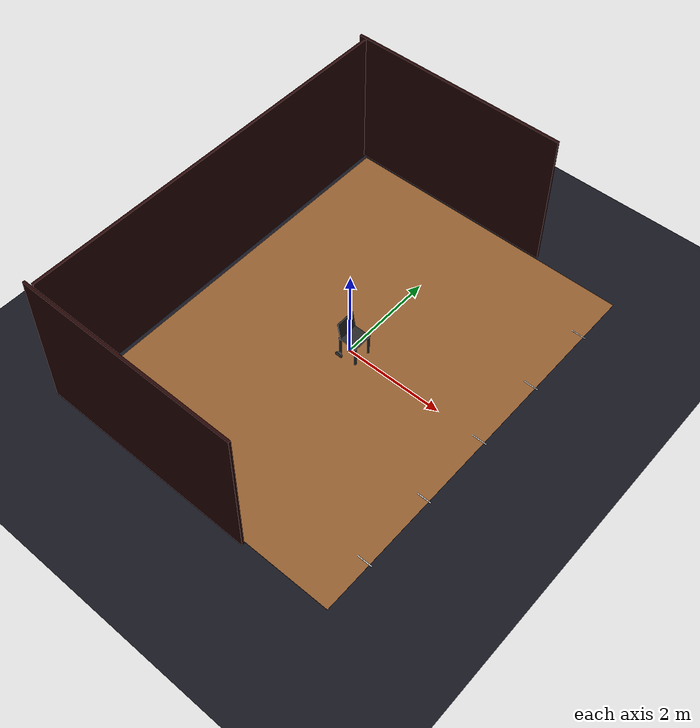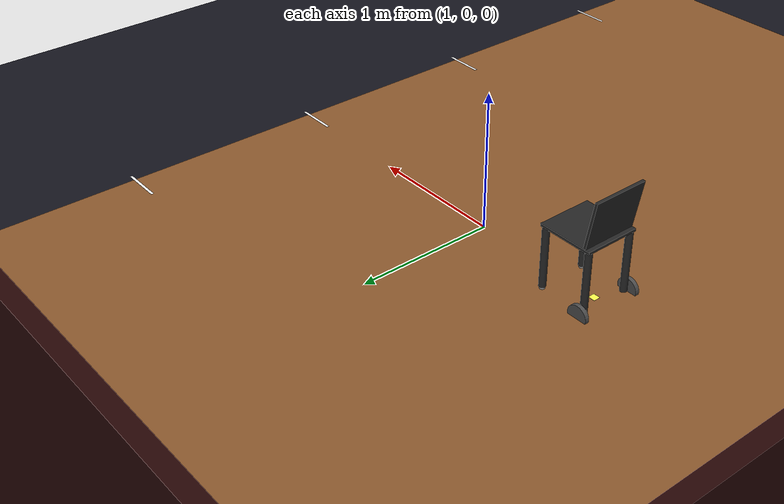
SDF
<?xml version="1.0" ?>
<sdf version="1.7">
  <world name="dance_stage">

    <!-- Gz Sim required system plugins -->
    <plugin filename="gz-sim-physics-system"
            name="gz::sim::systems::Physics"/>
    <plugin filename="gz-sim-scene-broadcaster-system"
            name="gz::sim::systems::SceneBroadcaster"/>
    <plugin filename="gz-sim-user-commands-system"
            name="gz::sim::systems::UserCommands"/>

    <!-- ── Physics ──────────────────────────────────────────────────────── -->
    <physics name="default_physics" type="ode">
      <max_step_size>0.002</max_step_size>
      <real_time_factor>1.0</real_time_factor>
      <real_time_update_rate>500</real_time_update_rate>
    </physics>

    <!-- ── Lighting ─────────────────────────────────────────────────────── -->

    <!-- Main overhead (warm stage light) -->
    <light type="directional" name="stage_overhead">
      <cast_shadows>true</cast_shadows>
      <pose>0 0 8 0 0 0</pose>
      <diffuse>1.0 0.95 0.85 1</diffuse>
      <specular>0.5 0.48 0.42 1</specular>
      <direction>0.0 0.0 -1.0</direction>
      <attenuation>
        <range>30</range>
        <constant>0.3</constant>
        <linear>0.01</linear>
        <quadratic>0.001</quadratic>
      </attenuation>
    </light>

    <!-- Stage left spot (warm amber) -->
    <light type="spot" name="spot_left">
      <pose>-3 3 5 0 0.6 -0.5</pose>
      <diffuse>1.0 0.7 0.3 1</diffuse>
      <specular>0.5 0.35 0.15 1</specular>
      <direction>0.3 -0.3 -1.0</direction>
      <attenuation>
        <range>15</range>
        <constant>0.1</constant>
        <linear>0.05</linear>
        <quadratic>0.01</quadratic>
      </attenuation>
      <spot>
        <inner_angle>0.5</inner_angle>
        <outer_angle>1.0</outer_angle>
        <falloff>1.0</falloff>
      </spot>
    </light>

    <!-- Stage right spot (cool blue) -->
    <light type="spot" name="spot_right">
      <pose>-3 -3 5 0 0.6 0.5</pose>
      <diffuse>0.4 0.6 1.0 1</diffuse>
      <specular>0.2 0.3 0.5 1</specular>
      <direction>0.3 0.3 -1.0</direction>
      <attenuation>
        <range>15</range>
        <constant>0.1</constant>
        <linear>0.05</linear>
        <quadratic>0.01</quadratic>
      </attenuation>
      <spot>
        <inner_angle>0.5</inner_angle>
        <outer_angle>1.0</outer_angle>
        <falloff>1.0</falloff>
      </spot>
    </light>

    <!-- Ambient fill -->
    <light type="directional" name="ambient_fill">
      <pose>0 0 10 0 0 0</pose>
      <diffuse>0.15 0.15 0.2 1</diffuse>
      <specular>0.0 0.0 0.0 1</specular>
      <direction>0 0 -1</direction>
    </light>

    <!-- ── Ground plane (beneath the stage) ─────────────────────────────── -->
    <model name="ground_plane">
      <static>true</static>
      <link name="ground_link">
        <collision name="ground_collision">
          <geometry>
            <plane><normal>0 0 1</normal><size>50 50</size></plane>
          </geometry>
          <surface>
            <friction>
              <ode><mu>1.0</mu><mu2>1.0</mu2></ode>
            </friction>
          </surface>
        </collision>
        <visual name="ground_visual">
          <geometry>
            <plane><normal>0 0 1</normal><size>50 50</size></plane>
          </geometry>
          <material>
            <ambient>0.05 0.05 0.08 1</ambient>
            <diffuse>0.08 0.08 0.12 1</diffuse>
          </material>
        </visual>
      </link>
    </model>

    <!-- ── Stage platform (raised wooden floor) ─────────────────────────── -->
    <model name="stage_floor">
      <static>true</static>
      <pose>0 0 0.0 0 0 0</pose>
      <link name="stage_link">
        <!-- Main stage surface -->
        <collision name="stage_collision">
          <geometry>
            <box><size>6.0 8.0 0.005</size></box>
          </geometry>
          <surface>
            <friction>
              <ode><mu>0.8</mu><mu2>0.8</mu2></ode>
            </friction>
          </surface>
        </collision>
        <visual name="stage_visual">
          <geometry>
            <box><size>6.0 8.0 0.005</size></box>
          </geometry>
          <material>
            <ambient>0.35 0.22 0.10 1</ambient>
            <diffuse>0.55 0.35 0.18 1</diffuse>
            <specular>0.15 0.12 0.08 1</specular>
          </material>
        </visual>
      </link>
    </model>

    <!-- ── Backdrop curtain (back wall) ─────────────────────────────────── -->
    <model name="backdrop">
      <static>true</static>
      <pose>-3.1 0 1.5 0 0 0</pose>
      <link name="backdrop_link">
        <visual name="backdrop_visual">
          <geometry>
            <box><size>0.05 8.0 3.0</size></box>
          </geometry>
          <material>
            <ambient>0.05 0.02 0.02 1</ambient>
            <diffuse>0.15 0.02 0.02 1</diffuse>
          </material>
        </visual>
        <collision name="backdrop_collision">
          <geometry>
            <box><size>0.05 8.0 3.0</size></box>
          </geometry>
        </collision>
      </link>
    </model>

    <!-- ── Side curtains ────────────────────────────────────────────────── -->
    <model name="curtain_left">
      <static>true</static>
      <pose>-1.0 4.05 1.5 0 0 0</pose>
      <link name="curtain_link">
        <visual name="curtain_visual">
          <geometry><box><size>4.5 0.05 3.0</size></box></geometry>
          <material>
            <ambient>0.05 0.02 0.02 1</ambient>
            <diffuse>0.15 0.02 0.02 1</diffuse>
          </material>
        </visual>
        <collision name="curtain_collision">
          <geometry><box><size>4.5 0.05 3.0</size></box></geometry>
        </collision>
      </link>
    </model>

    <model name="curtain_right">
      <static>true</static>
      <pose>-1.0 -4.05 1.5 0 0 0</pose>
      <link name="curtain_link">
        <visual name="curtain_visual">
          <geometry><box><size>4.5 0.05 3.0</size></box></geometry>
          <material>
            <ambient>0.05 0.02 0.02 1</ambient>
            <diffuse>0.15 0.02 0.02 1</diffuse>
          </material>
        </visual>
        <collision name="curtain_collision">
          <geometry><box><size>4.5 0.05 3.0</size></box></geometry>
        </collision>
      </link>
    </model>

    <!-- ── Stage edge markers (tape lines, like real dance stages) ────── -->
    <model name="center_mark">
      <static>true</static>
      <pose>0 0 0.006 0 0 0</pose>
      <link name="mark_link">
        <visual name="mark_visual">
          <geometry><box><size>0.05 0.05 0.001</size></box></geometry>
          <material>
            <ambient>0.8 0.8 0.2 1</ambient>
            <diffuse>1.0 1.0 0.3 1</diffuse>
            <emissive>0.3 0.3 0.1 1</emissive>
          </material>
        </visual>
      </link>
    </model>

    <!-- Downstage edge markers (audience-facing, 5 small marks) -->
    <model name="ds_mark_1"><static>true</static>
      <pose>2.9 -3.0 0.006 0 0 0</pose>
      <link name="l"><visual name="v"><geometry><box><size>0.3 0.02 0.001</size></box></geometry>
        <material><ambient>0.8 0.8 0.8 1</ambient><diffuse>1 1 1 1</diffuse><emissive>0.2 0.2 0.2 1</emissive></material>
      </visual></link>
    </model>
    <model name="ds_mark_2"><static>true</static>
      <pose>2.9 -1.5 0.006 0 0 0</pose>
      <link name="l"><visual name="v"><geometry><box><size>0.3 0.02 0.001</size></box></geometry>
        <material><ambient>0.8 0.8 0.8 1</ambient><diffuse>1 1 1 1</diffuse><emissive>0.2 0.2 0.2 1</emissive></material>
      </visual></link>
    </model>
    <model name="ds_mark_3"><static>true</static>
      <pose>2.9 0.0 0.006 0 0 0</pose>
      <link name="l"><visual name="v"><geometry><box><size>0.3 0.02 0.001</size></box></geometry>
        <material><ambient>0.8 0.8 0.8 1</ambient><diffuse>1 1 1 1</diffuse><emissive>0.2 0.2 0.2 1</emissive></material>
      </visual></link>
    </model>
    <model name="ds_mark_4"><static>true</static>
      <pose>2.9 1.5 0.006 0 0 0</pose>
      <link name="l"><visual name="v"><geometry><box><size>0.3 0.02 0.001</size></box></geometry>
        <material><ambient>0.8 0.8 0.8 1</ambient><diffuse>1 1 1 1</diffuse><emissive>0.2 0.2 0.2 1</emissive></material>
      </visual></link>
    </model>
    <model name="ds_mark_5"><static>true</static>
      <pose>2.9 3.0 0.006 0 0 0</pose>
      <link name="l"><visual name="v"><geometry><box><size>0.3 0.02 0.001</size></box></geometry>
        <material><ambient>0.8 0.8 0.8 1</ambient><diffuse>1 1 1 1</diffuse><emissive>0.2 0.2 0.2 1</emissive></material>
      </visual></link>
    </model>

    <!-- ── Chair Robot (embedded to avoid spawn/gz-transport issues) ─────── -->
    <model name='chair_robot'>
      <pose>0 0 0.01 0 0 0</pose>
      <link name='base_footprint'>
        <inertial>
          <pose>0.04887983706720979 0 0.4418024439918533 0 0 0</pose>
          <mass>4.91</mass>
          <inertia>
            <ixx>0.281118</ixx><ixy>0</ixy><ixz>0.075792</ixz>
            <iyy>0.303047</iyy><iyz>0</iyz><izz>0.202419</izz>
          </inertia>
        </inertial>
        <collision name='seat_col'><pose>0.1 0 0.46 0 0 0</pose><geometry><box><size>0.4 0.4 0.02</size></box></geometry></collision>
        <collision name='bl_leg_col'><pose>-0.075 0.175 0.235 0 0 0</pose><geometry><cylinder><length>0.45</length><radius>0.025</radius></cylinder></geometry></collision>
        <collision name='br_leg_col'><pose>-0.075 -0.175 0.235 0 0 0</pose><geometry><cylinder><length>0.45</length><radius>0.025</radius></cylinder></geometry></collision>
        <collision name='back_col'><pose>-0.09 0 0.645 0 -0.1745 0</pose><geometry><box><size>0.02 0.4 0.35</size></box></geometry></collision>
        <collision name='fl_leg_col'><pose>0.275 0.175 0.235 0 0 0</pose><geometry><cylinder><length>0.45</length><radius>0.025</radius></cylinder></geometry></collision>
        <collision name='fl_cast_col'><pose>0.275 0.175 -0.005 0 0 0</pose><geometry><sphere><radius>0.02</radius></sphere></geometry><surface><friction><ode><mu>0.001</mu><mu2>0.001</mu2></ode></friction></surface></collision>
        <collision name='fr_leg_col'><pose>0.275 -0.175 0.235 0 0 0</pose><geometry><cylinder><length>0.45</length><radius>0.025</radius></cylinder></geometry></collision>
        <collision name='fr_cast_col'><pose>0.275 -0.175 -0.005 0 0 0</pose><geometry><sphere><radius>0.02</radius></sphere></geometry><surface><friction><ode><mu>0.001</mu><mu2>0.001</mu2></ode></friction></surface></collision>
        <visual name='seat_vis'><pose>0.1 0 0.46 0 0 0</pose><geometry><box><size>0.4 0.4 0.02</size></box></geometry><material><diffuse>0.15 0.15 0.15 1</diffuse><ambient>0.15 0.15 0.15 1</ambient></material></visual>
        <visual name='bl_leg_vis'><pose>-0.075 0.175 0.235 0 0 0</pose><geometry><cylinder><length>0.45</length><radius>0.025</radius></cylinder></geometry><material><diffuse>0.15 0.15 0.15 1</diffuse><ambient>0.15 0.15 0.15 1</ambient></material></visual>
        <visual name='br_leg_vis'><pose>-0.075 -0.175 0.235 0 0 0</pose><geometry><cylinder><length>0.45</length><radius>0.025</radius></cylinder></geometry><material><diffuse>0.15 0.15 0.15 1</diffuse><ambient>0.15 0.15 0.15 1</ambient></material></visual>
        <visual name='back_vis'><pose>-0.09 0 0.645 0 -0.1745 0</pose><geometry><box><size>0.02 0.4 0.35</size></box></geometry><material><diffuse>0.15 0.15 0.15 1</diffuse><ambient>0.15 0.15 0.15 1</ambient></material></visual>
        <visual name='fl_leg_vis'><pose>0.275 0.175 0.235 0 0 0</pose><geometry><cylinder><length>0.45</length><radius>0.025</radius></cylinder></geometry><material><diffuse>0.15 0.15 0.15 1</diffuse><ambient>0.15 0.15 0.15 1</ambient></material></visual>
        <visual name='fl_cast_vis'><pose>0.275 0.175 -0.005 0 0 0</pose><geometry><sphere><radius>0.02</radius></sphere></geometry><material><diffuse>0.5 0.5 0.5 1</diffuse><ambient>0.5 0.5 0.5 1</ambient></material></visual>
        <visual name='fr_leg_vis'><pose>0.275 -0.175 0.235 0 0 0</pose><geometry><cylinder><length>0.45</length><radius>0.025</radius></cylinder></geometry><material><diffuse>0.15 0.15 0.15 1</diffuse><ambient>0.15 0.15 0.15 1</ambient></material></visual>
        <visual name='fr_cast_vis'><pose>0.275 -0.175 -0.005 0 0 0</pose><geometry><sphere><radius>0.02</radius></sphere></geometry><material><diffuse>0.5 0.5 0.5 1</diffuse><ambient>0.5 0.5 0.5 1</ambient></material></visual>
      </link>
      <joint name='back_left_wheel_joint' type='revolute'>
        <pose relative_to='base_footprint'>-0.075 0.22 0.01 -1.5708 0 0</pose>
        <parent>base_footprint</parent><child>back_left_wheel</child>
        <axis><xyz>0 0 1</xyz><limit><lower>-1e16</lower><upper>1e16</upper></limit><dynamics><damping>0.1</damping><friction>0.05</friction></dynamics></axis>
      </joint>
      <link name='back_left_wheel'>
        <pose relative_to='back_left_wheel_joint'>0 0 0 0 0 0</pose>
        <inertial><mass>0.5</mass><inertia><ixx>0.000741</ixx><ixy>0</ixy><ixz>0</ixz><iyy>0.000741</iyy><iyz>0</iyz><izz>0.001406</izz></inertia></inertial>
        <collision name='blw_col'><geometry><cylinder><length>0.03</length><radius>0.075</radius></cylinder></geometry><surface><friction><ode><mu>1.5</mu><mu2>1.5</mu2></ode></friction></surface></collision>
        <visual name='blw_vis'><geometry><cylinder><length>0.03</length><radius>0.075</radius></cylinder></geometry><material><diffuse>0.3 0.3 0.3 1</diffuse><ambient>0.3 0.3 0.3 1</ambient></material></visual>
      </link>
      <joint name='back_right_wheel_joint' type='revolute'>
        <pose relative_to='base_footprint'>-0.075 -0.22 0.01 -1.5708 0 0</pose>
        <parent>base_footprint</parent><child>back_right_wheel</child>
        <axis><xyz>0 0 1</xyz><limit><lower>-1e16</lower><upper>1e16</upper></limit><dynamics><damping>0.1</damping><friction>0.05</friction></dynamics></axis>
      </joint>
      <link name='back_right_wheel'>
        <pose relative_to='back_right_wheel_joint'>0 0 0 0 0 0</pose>
        <inertial><mass>0.5</mass><inertia><ixx>0.000741</ixx><ixy>0</ixy><ixz>0</ixz><iyy>0.000741</iyy><iyz>0</iyz><izz>0.001406</izz></inertia></inertial>
        <collision name='brw_col'><geometry><cylinder><length>0.03</length><radius>0.075</radius></cylinder></geometry><surface><friction><ode><mu>1.5</mu><mu2>1.5</mu2></ode></friction></surface></collision>
        <visual name='brw_vis'><geometry><cylinder><length>0.03</length><radius>0.075</radius></cylinder></geometry><material><diffuse>0.3 0.3 0.3 1</diffuse><ambient>0.3 0.3 0.3 1</ambient></material></visual>
      </link>
      <plugin name='gz::sim::systems::DiffDrive' filename='gz-sim-diff-drive-system'>
        <left_joint>back_left_wheel_joint</left_joint>
        <right_joint>back_right_wheel_joint</right_joint>
        <wheel_separation>0.45</wheel_separation>
        <wheel_radius>0.075</wheel_radius>
        <max_linear_acceleration>2.0</max_linear_acceleration>
        <odom_publish_frequency>50</odom_publish_frequency>
        <topic>cmd_vel</topic>
        <odom_topic>odom</odom_topic>
        <tf_topic>tf</tf_topic>
        <frame_id>odom</frame_id>
        <child_frame_id>base_footprint</child_frame_id>
      </plugin>
      <plugin name='gz::sim::systems::JointStatePublisher' filename='gz-sim-joint-state-publisher-system'>
        <joint_name>back_left_wheel_joint</joint_name>
        <joint_name>back_right_wheel_joint</joint_name>
        <update_rate>50</update_rate>
        <topic>joint_states</topic>
      </plugin>
    </model>

  </world>
</sdf>
